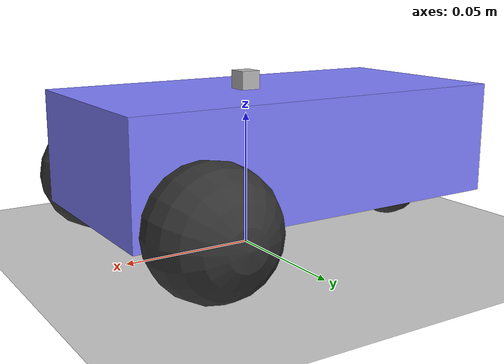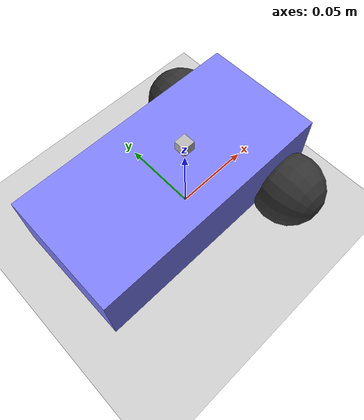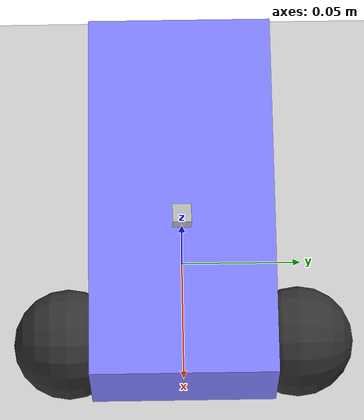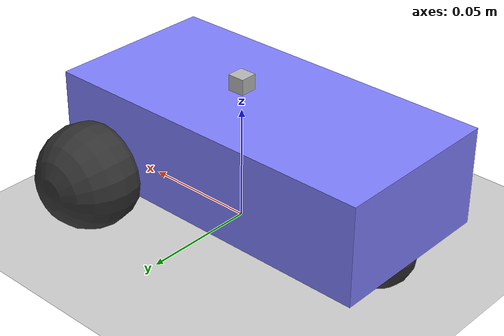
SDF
<?xml version="1.0" ?>
<sdf version="1.8">
  <world name="demo">
    <plugin
      filename="gz-sim-physics-system"
      name="gz::sim::systems::Physics">
    </plugin>
    <plugin
      filename="gz-sim-sensors-system"
      name="gz::sim::systems::Sensors">
      <render_engine>ogre2</render_engine>
    </plugin>
    <plugin
      filename="gz-sim-scene-broadcaster-system"
      name="gz::sim::systems::SceneBroadcaster">
    </plugin>
    <plugin
      filename="gz-sim-user-commands-system"
      name="gz::sim::systems::UserCommands">
    </plugin>
    <plugin
      filename="gz-sim-imu-system"
      name="gz::sim::systems::Imu">
    </plugin>

    <light name="sun" type="directional">
      <cast_shadows>true</cast_shadows>
      <pose>0 0 10 0 0 0</pose>
      <diffuse>0.8 0.8 0.8 1</diffuse>
      <specular>0.2 0.2 0.2 1</specular>
      <attenuation>
        <range>1000</range>
        <constant>0.9</constant>
        <linear>0.01</linear>
        <quadratic>0.001</quadratic>
      </attenuation>
      <direction>-0.5 0.1 -0.9</direction>
    </light>

    <model name="ground_plane">
      <static>true</static>
      <link name="link">
        <collision name="collision">
          <geometry>
            <plane>
              <normal>0 0 1</normal>
              <size>100 100</size>
            </plane>
          </geometry>
        </collision>
        <visual name="visual">
          <geometry>
            <plane>
              <normal>0 0 1</normal>
              <size>100 100</size>
            </plane>
          </geometry>
          <material>
            <ambient>0.8 0.8 0.8 1</ambient>
            <diffuse>0.8 0.8 0.8 1</diffuse>
            <specular>0.8 0.8 0.8 1</specular>
          </material>
        </visual>
      </link>
    </model>

    <model name="diff_drive">
      <self_collide>true</self_collide>
      <pose>0 0 0.025 0 0 0</pose>
      <include merge="true">
        <uri>model://diff_drive</uri>
      </include>

      <plugin
        filename="gz-sim-joint-state-publisher-system"
        name="gz::sim::systems::JointStatePublisher">
      </plugin>

      <plugin
        filename="gz-sim-pose-publisher-system"
        name="gz::sim::systems::PosePublisher">
        <publish_link_pose>true</publish_link_pose>
        <use_pose_vector_msg>true</use_pose_vector_msg>
        <static_publisher>true</static_publisher>
        <static_update_frequency>1</static_update_frequency>
      </plugin>

      <plugin
        filename="gz-sim-odometry-publisher-system"
        name="gz::sim::systems::OdometryPublisher">
        <odom_frame>diff_drive/odom</odom_frame>
        <robot_base_frame>diff_drive</robot_base_frame>
      </plugin>
    </model>

  </world>
</sdf>

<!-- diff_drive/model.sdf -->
<!--
  Modified from ros_gz_example_description/models/diff_drive/model.sdf in
  ros_gz_project_template (Apache 2.0) for the deskpet project.
-->
<sdf version="1.8">
    <model name='diff_drive'>
      <link name='chassis'>
        <pose>-0.0113 -0 0.013 0 -0 0</pose>
        <inertial>
          <mass>0.3</mass>
          <inertia>
            <ixx>0.000184</ixx>
            <ixy>0</ixy>
            <ixz>0</ixz>
            <iyy>0.000607</iyy>
            <iyz>0</iyz>
            <izz>0.000702</izz>
          </inertia>
        </inertial>
        <visual name='visual_chassis'>
          <geometry>
            <box>
              <size>0.15 0.0746 0.0424</size>
            </box>
          </geometry>
          <material>
            <ambient>0.5 0.5 1.0 1</ambient>
            <diffuse>0.5 0.5 1.0 1</diffuse>
            <specular>0.0 0.0 1.0 1</specular>
          </material>
        </visual>
        <collision name='collision_chassis'>
          <geometry>
            <box>
              <size>0.15 0.0746 0.0424</size>
            </box>
          </geometry>
        </collision>
      </link>

      <link name='left_wheel'>
        <pose>0.0413 0.0466 -0.0019 -1.5707 0 0</pose>
        <inertial>
          <mass>0.03</mass>
          <inertia>
            <ixx>0.000006</ixx>
            <ixy>0</ixy>
            <ixz>0</ixz>
            <iyy>0.000006</iyy>
            <iyz>0</iyz>
            <izz>0.000006</izz>
          </inertia>
        </inertial>
        <visual name='visual_left_wheel'>
          <geometry>
            <sphere>
              <radius>0.0224</radius>
            </sphere>
          </geometry>
          <material>
            <ambient>0.2 0.2 0.2 1</ambient>
            <diffuse>0.2 0.2 0.2 1</diffuse>
            <specular>0.2 0.2 0.2 1</specular>
          </material>
        </visual>
        <collision name='collision_left_wheel'>
          <geometry>
            <sphere>
              <radius>0.0224</radius>
            </sphere>
          </geometry>
        </collision>
      </link>

      <link name='right_wheel'>
        <pose>0.0413 -0.0466 -0.0019 -1.5707 0 0</pose>
        <inertial>
          <mass>0.03</mass>
          <inertia>
            <ixx>0.000006</ixx>
            <ixy>0</ixy>
            <ixz>0</ixz>
            <iyy>0.000006</iyy>
            <iyz>0</iyz>
            <izz>0.000006</izz>
          </inertia>
        </inertial>
        <visual name='visual_right_wheel'>
          <geometry>
            <sphere>
              <radius>0.0224</radius>
            </sphere>
          </geometry>
          <material>
            <ambient>0.2 0.2 0.2 1</ambient>
            <diffuse>0.2 0.2 0.2 1</diffuse>
            <specular>0.2 0.2 0.2 1</specular>
          </material>
        </visual>
        <collision name='collision_right_wheel'>
          <geometry>
            <sphere>
              <radius>0.0224</radius>
            </sphere>
          </geometry>
        </collision>
      </link>

      <link name='caster'>
        <pose>-0.0714 -0 -0.0093 0 -0 0</pose>
        <inertial>
          <mass>0.01</mass>
          <inertia>
            <ixx>0.0000009</ixx>
            <ixy>0</ixy>
            <ixz>0</ixz>
            <iyy>0.0000009</iyy>
            <iyz>0</iyz>
            <izz>0.0000009</izz>
          </inertia>
        </inertial>
        <visual name='visual_caster'>
          <geometry>
            <sphere>
              <radius>0.0149</radius>
            </sphere>
          </geometry>
          <material>
            <ambient>0.2 0.2 0.2 1</ambient>
            <diffuse>0.2 0.2 0.2 1</diffuse>
            <specular>0.2 0.2 0.2 1</specular>
          </material>
        </visual>
        <collision name='collision_caster'>
          <geometry>
            <sphere>
              <radius>0.0149</radius>
            </sphere>
          </geometry>
        </collision>
      </link>

      <link name="lidar_link">
        <pose>0 0 0.0373 0 0 0</pose>
        <inertial>
          <mass>0.005</mass>
          <inertia>
            <ixx>0.0000001</ixx>
            <iyy>0.0000001</iyy>
            <izz>0.0000001</izz>
          </inertia>
        </inertial>
        <collision name="collision">
          <geometry>
            <box>
              <size>0.0075 0.0075 0.0075</size>
            </box>
          </geometry>
        </collision>
        <visual name="visual">
          <geometry>
            <box>
              <size>0.0075 0.0075 0.0075</size>
            </box>
          </geometry>
        </visual>
        <sensor name='tof' type='gpu_lidar'>
          <pose>0 0 0 0 0 0</pose>
          <topic>tof</topic>
           <gz_frame_id>diff_drive/lidar_link</gz_frame_id>
          <update_rate>10</update_rate>
          <lidar>
            <scan>
              <horizontal>
                <samples>1</samples>
                <resolution>1</resolution>
                <min_angle>0</min_angle>
                <max_angle>0</max_angle>
              </horizontal>
              <vertical>
                <samples>1</samples>
                <resolution>1</resolution>
                <min_angle>0.0</min_angle>
                <max_angle>0.0</max_angle>
              </vertical>
            </scan>
            <range>
              <min>0.03</min>
              <max>2.0</max>
              <resolution>0.001</resolution>
            </range>
          </lidar>
          <visualize>true</visualize>
        </sensor>
      </link>

      <link name="imu_link">
        <pose>0 0 0.02 0 0 0</pose>
        <inertial>
          <mass>0.002</mass>
          <inertia>
            <ixx>0.0000001</ixx>
            <iyy>0.0000001</iyy>
            <izz>0.0000001</izz>
          </inertia>
        </inertial>
        <sensor name='imu' type='imu'>
          <topic>imu</topic>
          <update_rate>50</update_rate>
        </sensor>
      </link>

      <joint name='lidar_joint' type='fixed'>
        <parent>chassis</parent>
        <child>lidar_link</child>
      </joint>

      <joint name='imu_joint' type='fixed'>
        <parent>chassis</parent>
        <child>imu_link</child>
      </joint>

      <joint name='left_wheel_joint' type='revolute'>
        <parent>chassis</parent>
        <child>left_wheel</child>
        <axis>
          <xyz>0 0 1</xyz>
          <limit>
            <lower>-1.79769e+308</lower>
            <upper>1.79769e+308</upper>
          </limit>
        </axis>
      </joint>

      <joint name='right_wheel_joint' type='revolute'>
        <parent>chassis</parent>
        <child>right_wheel</child>
        <axis>
          <xyz>0 0 1</xyz>
          <limit>
            <lower>-1.79769e+308</lower>
            <upper>1.79769e+308</upper>
          </limit>
        </axis>
      </joint>

      <joint name='caster_wheel' type='ball'>
        <parent>chassis</parent>
        <child>caster</child>
      </joint>

      <plugin
        filename="ignition-gazebo-diff-drive-system"
        name="ignition::gazebo::systems::DiffDrive">
        <left_joint>left_wheel_joint</left_joint>
        <right_joint>right_wheel_joint</right_joint>
        <wheel_separation>0.0932</wheel_separation>
        <wheel_radius>0.0224</wheel_radius>
        <odom_publish_frequency>1</odom_publish_frequency>
        <max_linear_acceleration>1</max_linear_acceleration>
        <min_linear_acceleration>-1</min_linear_acceleration>
        <max_angular_acceleration>2</max_angular_acceleration>
        <min_angular_acceleration>-2</min_angular_acceleration>
        <max_linear_velocity>0.5</max_linear_velocity>
        <min_linear_velocity>-0.5</min_linear_velocity>
        <max_angular_velocity>1</max_angular_velocity>
        <min_angular_velocity>-1</min_angular_velocity>
      </plugin>
    </model>
</sdf>
